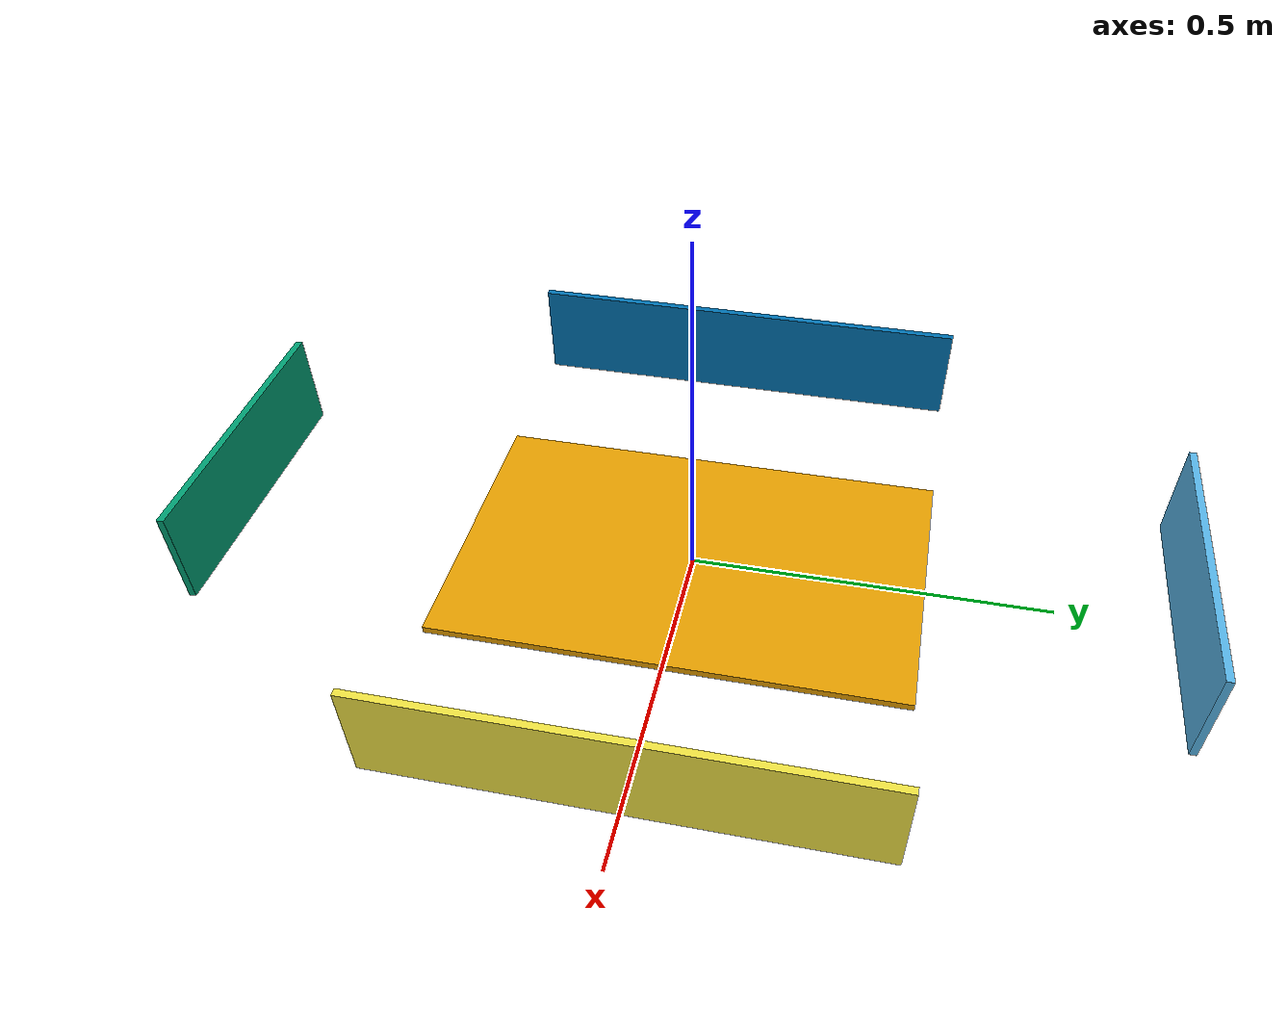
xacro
<robot xmlns:xacro="http://www.ros.org/wiki/xacro" name="shelf">
	<xacro:include filename="$(find fcsc_description)/model/create_box.xacro"/>

	<xacro:macro name="box_inertial" params="mass x y z *origin">
		<inertial>
			<mass value="${mass}" />
			<xacro:insert_block name="origin" />
			<inertia  ixx="${mass*(y*y+z*z)/12}" ixy = "0" ixz = "0"
								iyy="${mass*(x*x+z*z)/12}" iyz = "0"
								izz="${mass*(x*x+y*y)/12}" />
		</inertial>
	</xacro:macro>

	<xacro:macro name="container" params="width depth height thickness">

		<xacro:create_box name="container_base" mass="5" x="${depth}" y="${width}" z="${thickness}">
			<origin xyz="0 0 ${thickness / 2}" rpy="0 0 0"/>
		</xacro:create_box>

		<xacro:create_box name="container_right" mass="5" x="${depth}" y="${thickness}" z="${height + thickness}">
			<origin xyz="0 ${(width + thickness) / 2} ${(height + thickness) / 2}" rpy="0 0 0"/>
		</xacro:create_box>

		<xacro:create_box name="container_left" mass="5" x="${depth}" y="${thickness}" z="${height + thickness}">
			<origin xyz="0 ${-(width + thickness) / 2} ${(height + thickness) / 2}" rpy="0 0 0"/>
		</xacro:create_box>

		<xacro:create_box name="container_forward" mass="5" x="${thickness}" y="${width}" z="${height + thickness}">
			<origin xyz="${(depth + thickness) / 2} 0 ${(height + thickness) / 2}" rpy="0 0 0"/>
		</xacro:create_box>

		<xacro:create_box name="container_back" mass="5" x="${thickness}" y="${width}" z="${height + thickness}">
			<origin xyz="${-(depth + thickness) / 2} 0 ${(height + thickness) / 2}" rpy="0 0 0"/>
		</xacro:create_box>

		<joint name="joint1" type="fixed">
			<parent link="container_base"/>
			<child link="container_right"/>
			<origin xyz="0 ${(width + thickness) / 2} 0" rpy="0 0 0"/>
		</joint>

		<joint name="joint2" type="fixed">
			<parent link="container_base"/>
			<child link="container_left"/>
			<origin xyz="0 ${-(width + thickness) / 2} 0" rpy="0 0 0"/>
		</joint>

		<joint name="joint3" type="fixed">
			<parent link="container_base"/>
			<child link="container_forward"/>
			<origin xyz="${(depth + thickness) / 2} 0 0" rpy="0 0 0"/>
		</joint>

		<joint name="joint4" type="fixed">
			<parent link="container_base"/>
			<child link="container_back"/>
			<origin xyz="${-(depth + thickness) / 2} 0 0" rpy="0 0 0"/>
		</joint>

	</xacro:macro>
	<xacro:container depth="0.41" width="0.65" height="0.13" thickness="0.01"/>
</robot>

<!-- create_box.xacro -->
<robot xmlns:xacro="http://www.ros.org/wiki/xacro" name="common">
  <xacro:macro name="create_box" params="name mass x y z *origin visual:=true">
    <link name="${name}">
      <inertial>
        <mass value="${mass}"/>
        <xacro:insert_block name="origin" />
        <inertia  ixx="${mass*(y*y+z*z)/12}" ixy = "0" ixz = "0"
                  iyy="${mass*(x*x+z*z)/12}" iyz = "0"
                  izz="${mass*(x*x+y*y)/12}" />
      </inertial>
      <collision>
        <xacro:insert_block name="origin"/>
        <geometry>
          <box size="${x} ${y} ${z}"/>
        </geometry>
      </collision>
      <xacro:if value="${visual}">
        <visual>
          <xacro:insert_block name="origin"/>
          <geometry>
            <box size="${x} ${y} ${z}"/>
          </geometry>
        </visual>
      </xacro:if>
    </link>
  </xacro:macro>
  <!-- example -->
</robot>
